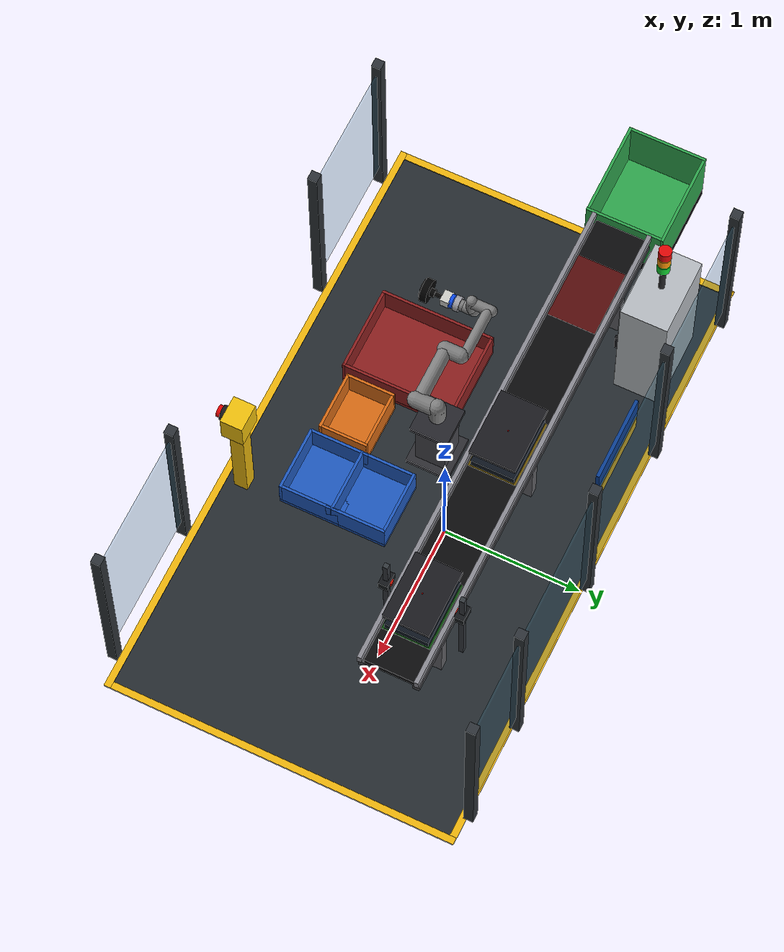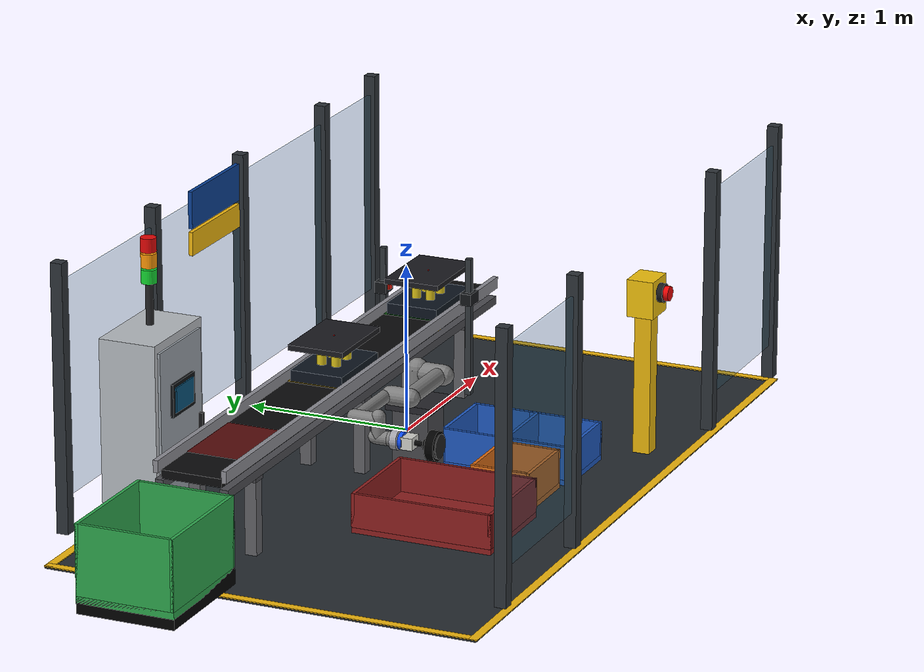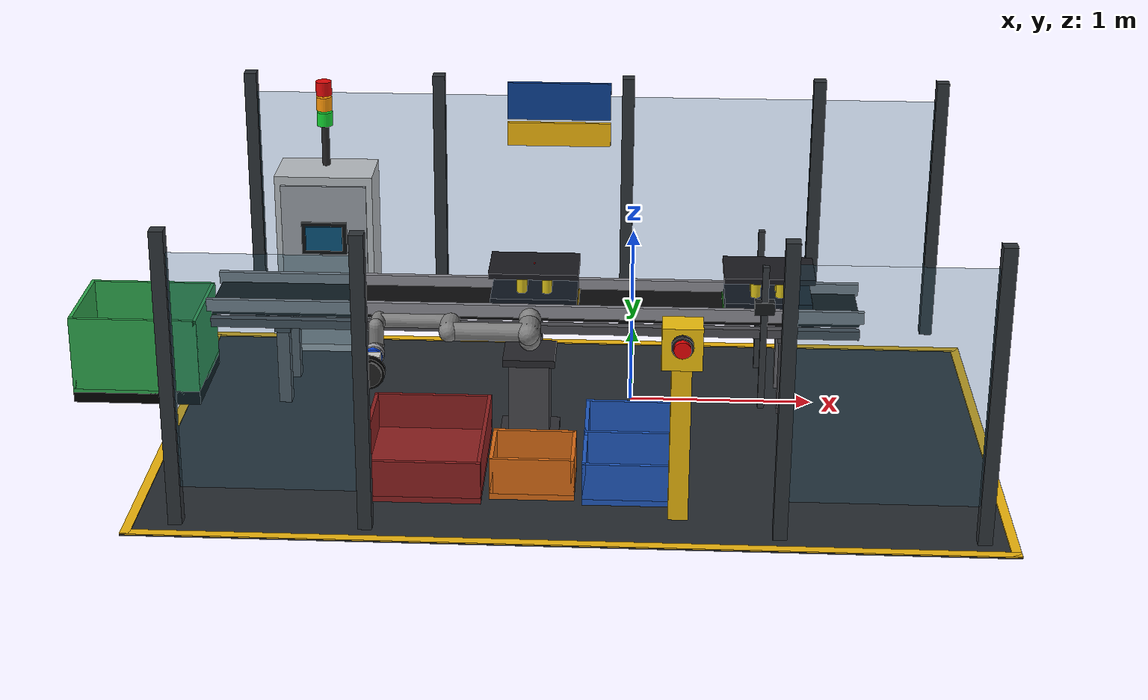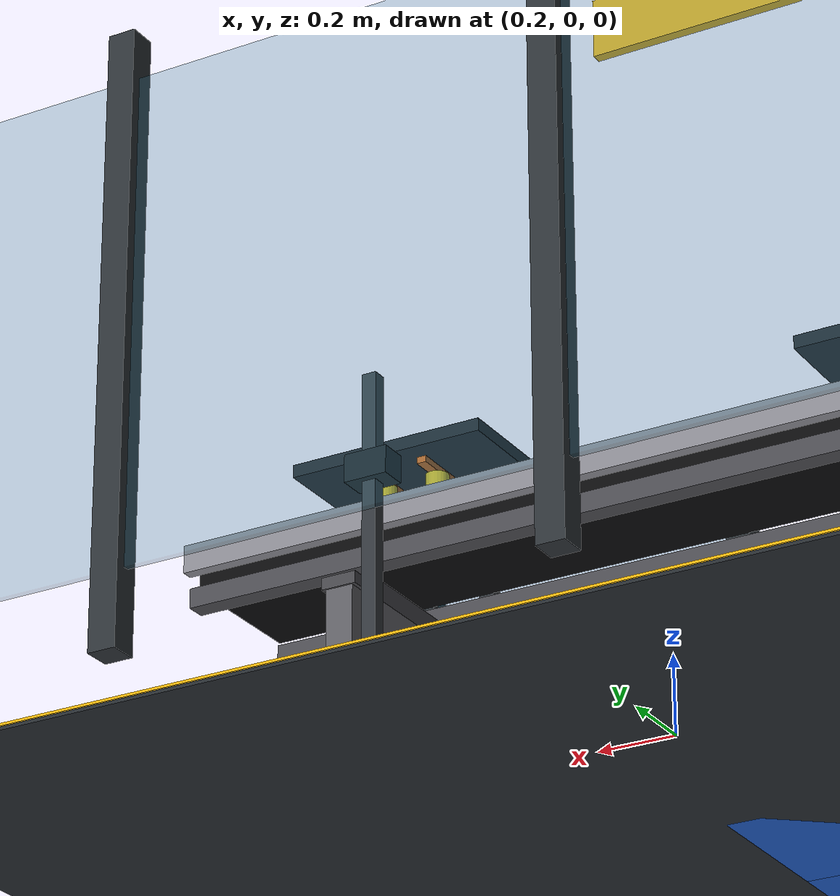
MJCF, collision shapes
<?xml version='1.0' encoding='utf-8'?>
<mujoco model="ur5e_battery_disassembly_optimized">
  <compiler angle="radian" meshdir="assets" autolimits="true" />
  <option integrator="implicitfast" timestep="0.002">
    <flag multiccd="enable" />
  </option>
  <default>
    <default class="ur5e">
      <material specular="0.5" shininess="0.25" />
      <joint axis="0 1 0" range="-6.28319 6.28319" armature="0.1" />
      <general gaintype="fixed" biastype="affine" ctrlrange="-6.2831 6.2831" gainprm="2000" biasprm="0 -2000 -400" forcerange="-150 150" />
      <default class="size3">
        <default class="size3_limited">
          <joint range="-3.1415 3.1415" />
          <general ctrlrange="-3.1415 3.1415" />
        </default>
      </default>
      <default class="size1">
        <general gainprm="500" biasprm="0 -500 -100" forcerange="-28 28" />
      </default>
      <default class="visual">
        <geom type="mesh" contype="0" conaffinity="0" group="2" />
      </default>
      <default class="collision">
        <geom type="capsule" group="3" />
        <default class="eef_collision">
          <geom type="cylinder" />
        </default>
      </default>
      <site size="0.001" rgba="0.5 0.5 0.5 0.3" group="4" />
    </default>
  </default>
  <asset>
    <material class="ur5e" name="black" rgba="0.033 0.033 0.033 1" />
    <material class="ur5e" name="jointgray" rgba="0.278 0.278 0.278 1" />
    <material class="ur5e" name="linkgray" rgba="0.82 0.82 0.82 1" />
    <material class="ur5e" name="urblue" rgba="0.49 0.678 0.8 1" />
    <mesh file="base_0.obj" />
    <mesh file="base_1.obj" />
    <mesh file="shoulder_0.obj" />
    <mesh file="shoulder_1.obj" />
    <mesh file="shoulder_2.obj" />
    <mesh file="upperarm_0.obj" />
    <mesh file="upperarm_1.obj" />
    <mesh file="upperarm_2.obj" />
    <mesh file="upperarm_3.obj" />
    <mesh file="forearm_0.obj" />
    <mesh file="forearm_1.obj" />
    <mesh file="forearm_2.obj" />
    <mesh file="forearm_3.obj" />
    <mesh file="wrist1_0.obj" />
    <mesh file="wrist1_1.obj" />
    <mesh file="wrist1_2.obj" />
    <mesh file="wrist2_0.obj" />
    <mesh file="wrist2_1.obj" />
    <mesh file="wrist2_2.obj" />
    <mesh file="wrist3.obj" />
  </asset>
  <worldbody>
    <light name="spotlight" mode="targetbodycom" target="wrist_2_link" pos="0 -1 2" />
    <body name="ur5e_pedestal" pos="-0.55 -0.32 -0.10">
      <geom name="pedestal_bottom_plate" type="box" pos="0 0 0.025" size="0.16 0.16 0.025" rgba="0.18 0.18 0.20 1" />
      <geom name="pedestal_column" type="box" pos="0 0 0.26" size="0.11 0.11 0.235" rgba="0.28 0.28 0.30 1" />
      <geom name="pedestal_top_plate" type="box" pos="0 0 0.50" size="0.14 0.14 0.02" rgba="0.15 0.15 0.17 1" />
    </body>
    <body name="base" pos="-0.55 -0.32 0.42" quat="0 0 0 -1" childclass="ur5e">
      <inertial mass="4.0" pos="0 0 0" diaginertia="0.00443333156 0.00443333156 0.0072" />
      <geom mesh="base_0" material="black" class="visual" />
      <geom mesh="base_1" material="jointgray" class="visual" />
      <body name="shoulder_link" pos="0 0 0.163">
        <inertial mass="3.7" pos="0 0 0" diaginertia="0.0102675 0.0102675 0.00666" />
        <joint name="shoulder_pan_joint" class="size3" axis="0 0 1" />
        <geom mesh="shoulder_0" material="urblue" class="visual" />
        <geom mesh="shoulder_1" material="black" class="visual" />
        <geom mesh="shoulder_2" material="jointgray" class="visual" />
        <geom class="collision" size="0.06 0.06" pos="0 0 -0.04" />
        <body name="upper_arm_link" pos="0 0.138 0" quat="1 0 1 0">
          <inertial mass="8.393" pos="0 0 0.2125" diaginertia="0.133886 0.133886 0.0151074" />
          <joint name="shoulder_lift_joint" class="size3" />
          <geom mesh="upperarm_0" material="linkgray" class="visual" />
          <geom mesh="upperarm_1" material="black" class="visual" />
          <geom mesh="upperarm_2" material="jointgray" class="visual" />
          <geom mesh="upperarm_3" material="urblue" class="visual" />
          <geom class="collision" pos="0 -0.04 0" quat="1 1 0 0" size="0.06 0.06" />
          <geom class="collision" size="0.05 0.2" pos="0 0 0.2" />
          <body name="forearm_link" pos="0 -0.131 0.425">
            <inertial mass="2.275" pos="0 0 0.196" diaginertia="0.0311796 0.0311796 0.004095" />
            <joint name="elbow_joint" class="size3_limited" />
            <geom mesh="forearm_0" material="urblue" class="visual" />
            <geom mesh="forearm_1" material="linkgray" class="visual" />
            <geom mesh="forearm_2" material="black" class="visual" />
            <geom mesh="forearm_3" material="jointgray" class="visual" />
            <geom class="collision" pos="0 0.08 0" quat="1 1 0 0" size="0.055 0.06" />
            <geom class="collision" size="0.038 0.19" pos="0 0 0.2" />
            <body name="wrist_1_link" pos="0 0 0.392" quat="1 0 1 0">
              <inertial mass="1.219" pos="0 0.127 0" diaginertia="0.0025599 0.0025599 0.0021942" />
              <joint name="wrist_1_joint" class="size1" />
              <geom mesh="wrist1_0" material="black" class="visual" />
              <geom mesh="wrist1_1" material="urblue" class="visual" />
              <geom mesh="wrist1_2" material="jointgray" class="visual" />
              <geom class="collision" pos="0 0.05 0" quat="1 1 0 0" size="0.04 0.07" />
              <body name="wrist_2_link" pos="0 0.127 0">
                <inertial mass="1.219" pos="0 0 0.1" diaginertia="0.0025599 0.0025599 0.0021942" />
                <joint name="wrist_2_joint" axis="0 0 1" class="size1" />
                <geom mesh="wrist2_0" material="black" class="visual" />
                <geom mesh="wrist2_1" material="urblue" class="visual" />
                <geom mesh="wrist2_2" material="jointgray" class="visual" />
                <geom class="collision" size="0.04 0.06" pos="0 0 0.04" />
                <geom class="collision" pos="0 0.02 0.1" quat="1 1 0 0" size="0.04 0.04" />
                <body name="wrist_3_link" pos="0 0 0.1">
                  <inertial mass="0.1889" pos="0 0.0771683 0" quat="1 0 0 1" diaginertia="0.000132134 9.90863e-05 9.90863e-05" />
                  <joint name="wrist_3_joint" class="size1" />
                  <geom material="linkgray" mesh="wrist3" class="visual" />
                  <geom class="eef_collision" pos="0 0.08 0" quat="1 1 0 0" size="0.04 0.02" />
                  <site name="attachment_site" pos="0 0.1 0" quat="-1 1 0 0" />
                  <body name="smc_vacuum_gripper_+Y" pos="0 0.105 0" quat="1 0 0 0">
                    <geom name="smc_adapter_vis" type="cylinder" pos="0 0.0 0" quat="0.7071068 0.7071068 0 0" size="0.055 0.02" rgba="0.65 0.65 0.68 1" contype="0" conaffinity="0" />
                    <geom name="smc_blue_ring_vis" type="cylinder" pos="0 0.04 0" quat="0.7071068 0.7071068 0 0" size="0.05 0.012" rgba="0.05 0.30 0.95 1" contype="0" conaffinity="0" />
                    <geom name="smc_vacuum_body_vis" type="box" pos="0 0.08 0" size="0.045 0.035 0.035" rgba="0.82 0.82 0.80 1" contype="0" conaffinity="0" />
                    <geom name="smc_vacuum_stem_vis" type="cylinder" pos="0 0.135 0" quat="0.7071068 0.7071068 0 0" size="0.016 0.05" rgba="0.02 0.02 0.02 1" contype="0" conaffinity="0" />
                    <geom name="smc_suction_neck_vis" type="cylinder" pos="0 0.19 0" quat="0.7071068 0.7071068 0 0" size="0.03 0.02" rgba="0.01 0.01 0.01 1" contype="0" conaffinity="0" />
                    <geom name="smc_suction_pad_vis" type="cylinder" pos="0 0.23 0" quat="0.7071068 0.7071068 0 0" size="0.085 0.025" rgba="0.005 0.005 0.005 1" contype="0" conaffinity="0" />
                    <geom name="smc_suction_lip_vis" type="cylinder" pos="0 0.26 0" quat="0.7071068 0.7071068 0 0" size="0.07 0.006" rgba="0.12 0.12 0.12 1" contype="0" conaffinity="0" />
                    <site name="suction_tcp" pos="0 0.28 0" size="0.015" rgba="1 0 0 1" />
                  </body>
                </body>
              </body>
            </body>
          </body>
        </body>
      </body>
    </body>
    <body name="disassembly_station" pos="-0.550000 0.200000 0.400000">
      <geom name="conveyor_belt_visual" type="box" pos="0 0 0.075" size="1.800000 0.180000 0.025000" rgba="0.04 0.04 0.045 1" />
      <geom name="conveyor_left_rail" type="box" pos="0 0.205 0.12" size="1.820000 0.015000 0.035000" rgba="0.55 0.55 0.58 1" />
      <geom name="conveyor_right_rail" type="box" pos="0 -0.205 0.12" size="1.820000 0.015000 0.035000" rgba="0.55 0.55 0.58 1" />
      <geom name="line_marker_infeed" type="box" pos="1.3 0 0.103" size="0.25 0.175 0.002" rgba="0.10 0.65 0.10 0.45" contype="0" conaffinity="0" />
      <geom name="line_marker_workstation" type="box" pos="0.0 0 0.103" size="0.25 0.175 0.002" rgba="0.95 0.75 0.05 0.45" contype="0" conaffinity="0" />
      <geom name="line_marker_outfeed" type="box" pos="-1.25 0 0.103" size="0.25 0.175 0.002" rgba="0.75 0.10 0.10 0.45" contype="0" conaffinity="0" />
      <geom name="conveyor_frame_left" type="box" pos="0 0.195 0.015" size="1.80 0.025 0.025" rgba="0.30 0.30 0.32 1" />
      <geom name="conveyor_frame_right" type="box" pos="0 -0.195 0.015" size="1.80 0.025 0.025" rgba="0.30 0.30 0.32 1" />
      <geom name="conveyor_support_1_L" type="box" pos="-1.4 0.17 -0.235" size="0.035 0.035 0.235" rgba="0.38 0.38 0.40 1" />
      <geom name="conveyor_support_1_R" type="box" pos="-1.4 -0.17 -0.235" size="0.035 0.035 0.235" rgba="0.38 0.38 0.40 1" />
      <geom name="conveyor_support_2_L" type="box" pos="0.0 0.17 -0.235" size="0.035 0.035 0.235" rgba="0.38 0.38 0.40 1" />
      <geom name="conveyor_support_2_R" type="box" pos="0.0 -0.17 -0.235" size="0.035 0.035 0.235" rgba="0.38 0.38 0.40 1" />
      <geom name="conveyor_support_3_L" type="box" pos="1.4 0.17 -0.235" size="0.035 0.035 0.235" rgba="0.38 0.38 0.40 1" />
      <geom name="conveyor_support_3_R" type="box" pos="1.4 -0.17 -0.235" size="0.035 0.035 0.235" rgba="0.38 0.38 0.40 1" />
      <geom name="conveyor_crossbeam_1" type="box" pos="-1.4 0 -0.015" size="0.045 0.21 0.025" rgba="0.28 0.28 0.30 1" />
      <geom name="conveyor_crossbeam_2" type="box" pos="0.0 0 -0.015" size="0.045 0.21 0.025" rgba="0.28 0.28 0.30 1" />
      <geom name="conveyor_crossbeam_3" type="box" pos="1.4 0 -0.015" size="0.045 0.21 0.025" rgba="0.28 0.28 0.30 1" />
    </body>
    <body name="battery_tray" pos="-0.550000 0.200000 0.535000">
      <freejoint name="battery_tray_freejoint" />
      <geom name="battery_tray_geom" type="box" pos="0 0 0" size="0.24 0.16 0.035" rgba="0.05 0.08 0.12 1" contype="1" conaffinity="1" condim="3" friction="1.0 0.005 0.0001" solref="0.01 1" solimp="0.9 0.95 0.001" margin="0.002" />
    </body>
    <body name="battery_cell_1" pos="-0.620000 0.155000 0.620000">
      <freejoint name="battery_cell_1_freejoint" />
      <geom name="battery_cell_1_geom" type="cylinder" pos="0 0 0" size="0.028 0.05" rgba="0.86 0.76 0.10 1" mass="0.4" friction="0.9 0.005 0.0002" />
      <site name="battery_cell_1_top_site" pos="0 0 0.050000" size="0.006" rgba="1 0 0 0.7" />
    </body>
    <body name="battery_cell_2" pos="-0.480000 0.155000 0.620000">
      <freejoint name="battery_cell_2_freejoint" />
      <geom name="battery_cell_2_geom" type="cylinder" pos="0 0 0" size="0.028 0.05" rgba="0.86 0.76 0.10 1" mass="0.4" friction="0.9 0.005 0.0002" />
      <site name="battery_cell_2_top_site" pos="0 0 0.050000" size="0.006" rgba="1 0 0 0.7" />
    </body>
    <body name="battery_cell_3" pos="-0.620000 0.245000 0.620000">
      <freejoint name="battery_cell_3_freejoint" />
      <geom name="battery_cell_3_geom" type="cylinder" pos="0 0 0" size="0.028 0.05" rgba="0.86 0.76 0.10 1" mass="0.4" friction="0.9 0.005 0.0002" />
      <site name="battery_cell_3_top_site" pos="0 0 0.050000" size="0.006" rgba="1 0 0 0.7" />
    </body>
    <body name="battery_cell_4" pos="-0.480000 0.245000 0.620000">
      <freejoint name="battery_cell_4_freejoint" />
      <geom name="battery_cell_4_geom" type="cylinder" pos="0 0 0" size="0.028 0.05" rgba="0.86 0.76 0.10 1" mass="0.4" friction="0.9 0.005 0.0002" />
      <site name="battery_cell_4_top_site" pos="0 0 0.050000" size="0.006" rgba="1 0 0 0.7" />
    </body>
    <body name="battery_busbar_1" pos="-0.620000 0.200000 0.680000">
      <freejoint name="battery_busbar_1_freejoint" />
      <geom name="battery_busbar_1_geom" type="box" pos="0 0 0" size="0.012 0.12 0.008" rgba="0.85 0.42 0.08 1" mass="0.12" friction="0.9 0.005 0.0002" />
      <site name="battery_busbar_1_top_site" pos="0 0 0.008000" size="0.006" rgba="1 0 0 0.7" />
    </body>
    <body name="battery_busbar_2" pos="-0.480000 0.200000 0.680000">
      <freejoint name="battery_busbar_2_freejoint" />
      <geom name="battery_busbar_2_geom" type="box" pos="0 0 0" size="0.012 0.12 0.008" rgba="0.85 0.42 0.08 1" mass="0.12" friction="0.9 0.005 0.0002" />
      <site name="battery_busbar_2_top_site" pos="0 0 0.008000" size="0.006" rgba="1 0 0 0.7" />
    </body>
    <body name="battery_cover" pos="-0.550000 0.200000 0.706000">
      <freejoint name="battery_cover_freejoint" />
      <geom name="battery_cover_geom" type="box" pos="0 0 0" size="0.25 0.17 0.016" rgba="0.10 0.10 0.12 1" mass="1.2" friction="0.9 0.005 0.0002" />
      <site name="battery_cover_top_site" pos="0 0 0.016000" size="0.006" rgba="1 0 0 0.7" />
    </body>
    <body name="ground_sort_bins">
      <body name="bin_cover" pos="-1.080000 -0.900000 0.000000">
        <geom name="bin_cover_bottom" type="box" pos="0.000000 0.180000 -0.080000" size="0.320000 0.420000 0.020000" rgba="0.55 0.12 0.12 1" friction="1.0 0.005 0.0001" />
        <geom name="bin_cover_wall_left" type="box" pos="-0.310000 0.180000 0.040000" size="0.010000 0.420000 0.100000" rgba="0.55 0.12 0.12 1" />
        <geom name="bin_cover_wall_right" type="box" pos="0.310000 0.180000 0.040000" size="0.010000 0.420000 0.100000" rgba="0.55 0.12 0.12 1" />
        <geom name="bin_cover_wall_front" type="box" pos="0.000000 -0.230000 0.040000" size="0.320000 0.010000 0.100000" rgba="0.55 0.12 0.12 1" />
        <geom name="bin_cover_wall_back" type="box" pos="0.000000 0.590000 0.040000" size="0.320000 0.010000 0.100000" rgba="0.55 0.12 0.12 1" />
      </body>
      <body name="bin_busbar" pos="-0.500000 -0.900000 0.000000">
        <geom name="bin_busbar_bottom" type="box" pos="0 0 -0.080000" size="0.220000 0.180000 0.020000" rgba="0.85 0.42 0.08 1" friction="1.0 0.005 0.0001" />
        <geom name="bin_busbar_wall_left" type="box" pos="-0.210000 0 0.040000" size="0.010000 0.180000 0.100000" rgba="0.85 0.42 0.08 1" />
        <geom name="bin_busbar_wall_right" type="box" pos="0.210000 0 0.040000" size="0.010000 0.180000 0.100000" rgba="0.85 0.42 0.08 1" />
        <geom name="bin_busbar_wall_front" type="box" pos="0 -0.170000 0.040000" size="0.220000 0.010000 0.100000" rgba="0.85 0.42 0.08 1" />
        <geom name="bin_busbar_wall_back" type="box" pos="0 0.170000 0.040000" size="0.220000 0.010000 0.100000" rgba="0.85 0.42 0.08 1" />
      </body>
      <body name="bin_cell" pos="0.000000 -0.900000 0.000000">
        <geom name="bin_cell_bottom" type="box" pos="0 0 -0.080000" size="0.240000 0.220000 0.020000" rgba="0.12 0.35 0.75 1" friction="1.0 0.005 0.0001" />
        <geom name="bin_cell_wall_left" type="box" pos="-0.230000 0 0.040000" size="0.010000 0.220000 0.100000" rgba="0.12 0.35 0.75 1" />
        <geom name="bin_cell_wall_right" type="box" pos="0.230000 0 0.040000" size="0.010000 0.220000 0.100000" rgba="0.12 0.35 0.75 1" />
        <geom name="bin_cell_wall_front" type="box" pos="0 -0.210000 0.040000" size="0.240000 0.010000 0.100000" rgba="0.12 0.35 0.75 1" />
        <geom name="bin_cell_wall_back" type="box" pos="0 0.175000 0.040000" size="0.240000 0.010000 0.100000" rgba="0.12 0.35 0.75 1" contype="1" conaffinity="1" condim="3" friction="1.0 0.005 0.0001" />
      </body>
    </body>
    <body name="pack2_battery_tray" pos="0.750000 0.200000 0.535000">
      <freejoint name="pack2_battery_tray_freejoint" />
      <geom name="pack2_battery_tray_geom" type="box" pos="0 0 0" size="0.24 0.16 0.035" rgba="0.05 0.08 0.12 1" contype="1" conaffinity="1" condim="3" friction="1.0 0.005 0.0001" solref="0.01 1" solimp="0.9 0.95 0.001" margin="0.002" />
    </body>
    <body name="pack2_battery_cover" pos="0.750000 0.200000 0.706000">
      <freejoint name="pack2_battery_cover_freejoint" />
      <geom name="pack2_battery_cover_geom" type="box" pos="0 0 0" size="0.25 0.17 0.016" rgba="0.10 0.10 0.12 1" mass="1.2" friction="0.9 0.005 0.0002" />
      <site name="pack2_battery_cover_top_site" pos="0 0 0.016000" size="0.006" rgba="1 0 0 0.7" />
    </body>
    <body name="pack2_battery_busbar_1" pos="0.680000 0.200000 0.680000">
      <freejoint name="pack2_battery_busbar_1_freejoint" />
      <geom name="pack2_battery_busbar_1_geom" type="box" pos="0 0 0" size="0.012 0.12 0.008" rgba="0.85 0.42 0.08 1" mass="0.12" friction="0.9 0.005 0.0002" />
      <site name="pack2_battery_busbar_1_top_site" pos="0 0 0.008000" size="0.006" rgba="1 0 0 0.7" />
    </body>
    <body name="pack2_battery_busbar_2" pos="0.820000 0.200000 0.680000">
      <freejoint name="pack2_battery_busbar_2_freejoint" />
      <geom name="pack2_battery_busbar_2_geom" type="box" pos="0 0 0" size="0.012 0.12 0.008" rgba="0.85 0.42 0.08 1" mass="0.12" friction="0.9 0.005 0.0002" />
      <site name="pack2_battery_busbar_2_top_site" pos="0 0 0.008000" size="0.006" rgba="1 0 0 0.7" />
    </body>
    <body name="pack2_battery_cell_1" pos="0.680000 0.155000 0.620000">
      <freejoint name="pack2_battery_cell_1_freejoint" />
      <geom name="pack2_battery_cell_1_geom" type="cylinder" pos="0 0 0" size="0.028 0.05" rgba="0.86 0.76 0.10 1" mass="0.4" friction="0.9 0.005 0.0002" />
      <site name="pack2_battery_cell_1_top_site" pos="0 0 0.050000" size="0.006" rgba="1 0 0 0.7" />
    </body>
    <body name="pack2_battery_cell_2" pos="0.820000 0.155000 0.620000">
      <freejoint name="pack2_battery_cell_2_freejoint" />
      <geom name="pack2_battery_cell_2_geom" type="cylinder" pos="0 0 0" size="0.028 0.05" rgba="0.86 0.76 0.10 1" mass="0.4" friction="0.9 0.005 0.0002" />
      <site name="pack2_battery_cell_2_top_site" pos="0 0 0.050000" size="0.006" rgba="1 0 0 0.7" />
    </body>
    <body name="pack2_battery_cell_3" pos="0.680000 0.245000 0.620000">
      <freejoint name="pack2_battery_cell_3_freejoint" />
      <geom name="pack2_battery_cell_3_geom" type="cylinder" pos="0 0 0" size="0.028 0.05" rgba="0.86 0.76 0.10 1" mass="0.4" friction="0.9 0.005 0.0002" />
      <site name="pack2_battery_cell_3_top_site" pos="0 0 0.050000" size="0.006" rgba="1 0 0 0.7" />
    </body>
    <body name="pack2_battery_cell_4" pos="0.820000 0.245000 0.620000">
      <freejoint name="pack2_battery_cell_4_freejoint" />
      <geom name="pack2_battery_cell_4_geom" type="cylinder" pos="0 0 0" size="0.028 0.05" rgba="0.86 0.76 0.10 1" mass="0.4" friction="0.9 0.005 0.0002" />
      <site name="pack2_battery_cell_4_top_site" pos="0 0 0.050000" size="0.006" rgba="1 0 0 0.7" />
    </body>
    <body name="empty_tray_bin" pos="-2.780000 0.200000 0.000000">
      <geom name="empty_tray_bin_bottom" type="box" pos="0 0 0.020" size="0.36 0.29 0.020" rgba="0.18 0.65 0.30 0.75" friction="1.0 0.005 0.0001" contype="1" conaffinity="1" condim="3" solref="0.01 1" solimp="0.9 0.95 0.001" margin="0.002" />
      <geom name="empty_tray_bin_wall_left" type="box" pos="-0.35 0 0.235" size="0.010 0.29 0.215" rgba="0.18 0.65 0.30 0.75" contype="1" conaffinity="1" condim="3" friction="1.0 0.005 0.0001" solref="0.01 1" solimp="0.9 0.95 0.001" margin="0.002" />
      <geom name="empty_tray_bin_wall_front" type="box" pos="0 -0.28 0.235" size="0.36 0.010 0.215" rgba="0.18 0.65 0.30 0.75" contype="1" conaffinity="1" condim="3" friction="1.0 0.005 0.0001" solref="0.01 1" solimp="0.9 0.95 0.001" margin="0.002" />
      <geom name="empty_tray_bin_wall_back" type="box" pos="0 0.28 0.235" size="0.36 0.010 0.215" rgba="0.18 0.65 0.30 0.75" contype="1" conaffinity="1" condim="3" friction="1.0 0.005 0.0001" solref="0.01 1" solimp="0.9 0.95 0.001" margin="0.002" />
      <geom name="empty_tray_bin_leg_1" type="box" pos="-0.28 -0.22 -0.030" size="0.025 0.025 0.050" rgba="0.25 0.25 0.27 1" />
      <geom name="empty_tray_bin_leg_2" type="box" pos="-0.28 0.22 -0.030" size="0.025 0.025 0.050" rgba="0.25 0.25 0.27 1" />
      <geom name="empty_tray_bin_leg_3" type="box" pos="0.28 -0.22 -0.030" size="0.025 0.025 0.050" rgba="0.25 0.25 0.27 1" />
      <geom name="empty_tray_bin_leg_4" type="box" pos="0.28 0.22 -0.030" size="0.025 0.025 0.050" rgba="0.25 0.25 0.27 1" />
      <geom name="empty_tray_bin_wall_right" type="box" pos="0.35 0 0.235" size="0.010 0.29 0.215" rgba="0.18 0.65 0.30 0.75" contype="1" conaffinity="1" condim="3" friction="1.0 0.005 0.0001" solref="0.01 1" solimp="0.9 0.95 0.001" margin="0.002" />
      <geom name="empty_tray_bin_collision_floor" type="box" pos="0.000000 0.000000 -0.010000" size="0.360000 0.290000 0.050000" rgba="0 0 0 0" contype="1" conaffinity="1" condim="3" friction="1.0 0.005 0.0001" solref="0.01 1" solimp="0.9 0.95 0.001" margin="0.002" />
    </body>
    <body name="bin_cell_2" pos="0.000000 -0.550000 0.000000">
      <geom name="bin_cell_2_bottom" type="box" pos="0 0 -0.080000" size="0.240000 0.220000 0.020000" rgba="0.12 0.35 0.75 1" friction="1.0 0.005 0.0001" />
      <geom name="bin_cell_2_wall_left" type="box" pos="-0.230000 0 0.040000" size="0.010000 0.220000 0.100000" rgba="0.12 0.35 0.75 1" />
      <geom name="bin_cell_2_wall_right" type="box" pos="0.230000 0 0.040000" size="0.010000 0.220000 0.100000" rgba="0.12 0.35 0.75 1" />
      <geom name="bin_cell_2_wall_back" type="box" pos="0 0.210000 0.040000" size="0.240000 0.010000 0.100000" rgba="0.12 0.35 0.75 1" />
    </body>
    <body name="professional_workcell" pos="0 0 0">
      <geom name="industrial_floor_zone" type="box" pos="-0.30 -0.28 -0.096" size="2.25 1.28 0.004" rgba="0.15 0.17 0.19 1" contype="0" conaffinity="0" group="2" />
      <geom name="safety_line_front" type="box" pos="-0.30 -1.54 -0.089" size="2.25 0.025 0.003" rgba="0.95 0.72 0.05 1" contype="0" conaffinity="0" group="2" />
      <geom name="safety_line_back" type="box" pos="-0.30 0.98 -0.089" size="2.25 0.025 0.003" rgba="0.95 0.72 0.05 1" contype="0" conaffinity="0" group="2" />
      <geom name="safety_line_left" type="box" pos="-2.525 -0.28 -0.089" size="0.025 1.28 0.003" rgba="0.95 0.72 0.05 1" contype="0" conaffinity="0" group="2" />
      <geom name="safety_line_right" type="box" pos="1.925 -0.28 -0.089" size="0.025 1.28 0.003" rgba="0.95 0.72 0.05 1" contype="0" conaffinity="0" group="2" />
      <geom name="guard_post_back_1" type="box" pos="-2.25 1.03 0.78" size="0.035 0.035 0.78" rgba="0.18 0.20 0.22 1" contype="0" conaffinity="0" group="2" />
      <geom name="guard_post_back_2" type="box" pos="-1.15 1.03 0.78" size="0.035 0.035 0.78" rgba="0.18 0.20 0.22 1" contype="0" conaffinity="0" group="2" />
      <geom name="guard_post_back_3" type="box" pos="-0.05 1.03 0.78" size="0.035 0.035 0.78" rgba="0.18 0.20 0.22 1" contype="0" conaffinity="0" group="2" />
      <geom name="guard_post_back_4" type="box" pos="1.05 1.03 0.78" size="0.035 0.035 0.78" rgba="0.18 0.20 0.22 1" contype="0" conaffinity="0" group="2" />
      <geom name="guard_post_back_5" type="box" pos="1.75 1.03 0.78" size="0.035 0.035 0.78" rgba="0.18 0.20 0.22 1" contype="0" conaffinity="0" group="2" />
      <geom name="guard_panel_back_1" type="box" pos="-1.7 1.03 0.82" size="0.515 0.008 0.62" rgba="0.18 0.42 0.52 0.28" contype="0" conaffinity="0" group="2" />
      <geom name="guard_panel_back_2" type="box" pos="-0.6 1.03 0.82" size="0.515 0.008 0.62" rgba="0.18 0.42 0.52 0.28" contype="0" conaffinity="0" group="2" />
      <geom name="guard_panel_back_3" type="box" pos="0.5 1.03 0.82" size="0.515 0.008 0.62" rgba="0.18 0.42 0.52 0.28" contype="0" conaffinity="0" group="2" />
      <geom name="guard_panel_back_4" type="box" pos="1.4 1.03 0.82" size="0.315 0.008 0.62" rgba="0.18 0.42 0.52 0.28" contype="0" conaffinity="0" group="2" />
      <geom name="guard_post_front_1" type="box" pos="-2.25 -1.58 0.78" size="0.035 0.035 0.78" rgba="0.18 0.20 0.22 1" contype="0" conaffinity="0" group="2" />
      <geom name="guard_post_front_2" type="box" pos="-1.3 -1.58 0.78" size="0.035 0.035 0.78" rgba="0.18 0.20 0.22 1" contype="0" conaffinity="0" group="2" />
      <geom name="guard_post_front_3" type="box" pos="0.75 -1.58 0.78" size="0.035 0.035 0.78" rgba="0.18 0.20 0.22 1" contype="0" conaffinity="0" group="2" />
      <geom name="guard_post_front_4" type="box" pos="1.75 -1.58 0.78" size="0.035 0.035 0.78" rgba="0.18 0.20 0.22 1" contype="0" conaffinity="0" group="2" />
      <geom name="guard_panel_front_left" type="box" pos="-1.775 -1.58 0.82" size="0.44 0.008 0.62" rgba="0.18 0.42 0.52 0.28" contype="0" conaffinity="0" group="2" />
      <geom name="guard_panel_front_right" type="box" pos="1.25 -1.58 0.82" size="0.465 0.008 0.62" rgba="0.18 0.42 0.52 0.28" contype="0" conaffinity="0" group="2" />
      <body name="control_cabinet" pos="-1.78 0.73 0">
        <geom name="cabinet_body" type="box" pos="0 0 0.54" size="0.28 0.17 0.54" rgba="0.72 0.74 0.76 1" contype="0" conaffinity="0" group="2" />
        <geom name="cabinet_door" type="box" pos="0 -0.176 0.54" size="0.245 0.008 0.49" rgba="0.60 0.63 0.66 1" contype="0" conaffinity="0" group="2" />
        <geom name="hmi_frame" type="box" pos="0 -0.190 0.72" size="0.13 0.012 0.095" rgba="0.05 0.06 0.07 1" contype="0" conaffinity="0" group="2" />
        <geom name="hmi_screen" type="box" pos="0 -0.204 0.72" size="0.105 0.006 0.072" rgba="0.03 0.32 0.48 1" contype="0" conaffinity="0" group="2" />
        <geom name="cabinet_handle" type="box" pos="0.205 -0.202 0.48" size="0.012 0.012 0.07" rgba="0.08 0.08 0.09 1" contype="0" conaffinity="0" group="2" />
      </body>
      <body name="stack_light" pos="-1.78 0.73 1.10">
        <geom name="stack_pole" type="cylinder" pos="0 0 0.12" size="0.022 0.12" rgba="0.15 0.15 0.16 1" contype="0" conaffinity="0" group="2" />
        <geom name="stack_green" type="cylinder" pos="0 0 0.28" size="0.045 0.04" rgba="0.08 0.85 0.20 1" contype="0" conaffinity="0" group="2" />
        <geom name="stack_yellow" type="cylinder" pos="0 0 0.37" size="0.045 0.04" rgba="1.00 0.60 0.03 1" contype="0" conaffinity="0" group="2" />
        <geom name="stack_red" type="cylinder" pos="0 0 0.46" size="0.045 0.04" rgba="0.90 0.03 0.03 1" contype="0" conaffinity="0" group="2" />
      </body>
      <body name="estop_station" pos="0.25 -1.38 0">
        <geom name="estop_post" type="box" pos="0 0 0.48" size="0.05 0.05 0.48" rgba="0.92 0.72 0.05 1" contype="0" conaffinity="0" group="2" />
        <geom name="estop_box" type="box" pos="0 0 0.94" size="0.10 0.08 0.11" rgba="0.95 0.76 0.05 1" contype="0" conaffinity="0" group="2" />
        <geom name="estop_black_base" type="cylinder" pos="0 -0.09 0.965" size="0.055 0.025" rgba="0.10 0.10 0.11 1" contype="0" conaffinity="0" group="2" quat="0.7071068 0.7071068 0 0" />
        <geom name="estop_red_button" type="cylinder" pos="0 -0.12 0.965" size="0.043 0.025" rgba="0.92 0.02 0.02 1" contype="0" conaffinity="0" group="2" quat="0.7071068 0.7071068 0 0" />
      </body>
      <body name="photoelectric_sensor_L" pos="0.72 -0.075 0">
        <geom name="sensor_post_L" type="box" pos="0 0 0.42" size="0.018 0.018 0.42" rgba="0.20 0.22 0.24 1" contype="0" conaffinity="0" group="2" />
        <geom name="sensor_head_L" type="box" pos="0 0 0.60" size="0.055 0.035 0.035" rgba="0.08 0.09 0.10 1" contype="0" conaffinity="0" group="2" />
        <geom name="sensor_lens_L" type="box" pos="0 0.038 0.60" size="0.020 0.006 0.018" rgba="0.90 0.10 0.04 1" contype="0" conaffinity="0" group="2" />
      </body>
      <body name="photoelectric_sensor_R" pos="0.72 0.475 0">
        <geom name="sensor_post_R" type="box" pos="0 0 0.42" size="0.018 0.018 0.42" rgba="0.20 0.22 0.24 1" contype="0" conaffinity="0" group="2" />
        <geom name="sensor_head_R" type="box" pos="0 0 0.60" size="0.055 0.035 0.035" rgba="0.08 0.09 0.10 1" contype="0" conaffinity="0" group="2" />
        <geom name="sensor_lens_R" type="box" pos="0 -0.038 0.60" size="0.020 0.006 0.018" rgba="0.90 0.10 0.04 1" contype="0" conaffinity="0" group="2" />
      </body>
      <body name="workcell_sign" pos="-0.45 1.00 0">
        <geom name="station_name_plate" type="box" pos="0 0 1.42" size="0.30 0.012 0.11" rgba="0.04 0.25 0.58 1" contype="0" conaffinity="0" group="2" />
        <geom name="robot_warning_plate" type="box" pos="0 0 1.22" size="0.30 0.012 0.07" rgba="0.95 0.72 0.05 1" contype="0" conaffinity="0" group="2" />
      </body>
    </body>
    <light name="industrial_light_L" pos="-1.45 -0.90 2.80" dir="0.25 0.10 -1" diffuse="0.78 0.80 0.83" specular="0.18 0.18 0.18" castshadow="true" />
    <light name="industrial_light_R" pos="1.20 0.65 2.70" dir="-0.25 -0.10 -1" diffuse="0.72 0.75 0.80" specular="0.15 0.15 0.15" castshadow="true" />
  </worldbody>
  <actuator>
    <general class="size3" name="shoulder_pan" joint="shoulder_pan_joint" />
    <general class="size3" name="shoulder_lift" joint="shoulder_lift_joint" />
    <general class="size3_limited" name="elbow" joint="elbow_joint" />
    <general class="size1" name="wrist_1" joint="wrist_1_joint" />
    <general class="size1" name="wrist_2" joint="wrist_2_joint" />
    <general class="size1" name="wrist_3" joint="wrist_3_joint" />
  </actuator>
  <equality>
    <weld name="fixture_battery_cover" body1="battery_cover" active="true" solref="0.008 1" />
    <weld name="fixture_battery_busbar_1" body1="battery_busbar_1" active="true" solref="0.008 1" />
    <weld name="fixture_battery_busbar_2" body1="battery_busbar_2" active="true" solref="0.008 1" />
    <weld name="fixture_battery_cell_1" body1="battery_cell_1" active="true" solref="0.008 1" />
    <weld name="fixture_battery_cell_2" body1="battery_cell_2" active="true" solref="0.008 1" />
    <weld name="fixture_battery_cell_3" body1="battery_cell_3" active="true" solref="0.008 1" />
    <weld name="fixture_battery_cell_4" body1="battery_cell_4" active="true" solref="0.008 1" />
  </equality>
  <keyframe>
    <key name="home" qpos="-1.831428077 -1.442282176 0.9637521567 -1.09226545 -1.570797549 -0.2606328797 -0.62 0.155 0.62 1 0 0 0 -0.48 0.155 0.62 1 0 0 0 -0.62 0.245 0.62 1 0 0 0 -0.48 0.245 0.62 1 0 0 0 -0.62 0.2 0.68 1 0 0 0 -0.48 0.2 0.68 1 0 0 0 -0.55 0.2 0.706 1 0 0 0" ctrl="-1.831428077 -1.442282176 0.9637521567 -1.09226545 -1.570797549 -0.2606328797" />
  </keyframe>
</mujoco>
